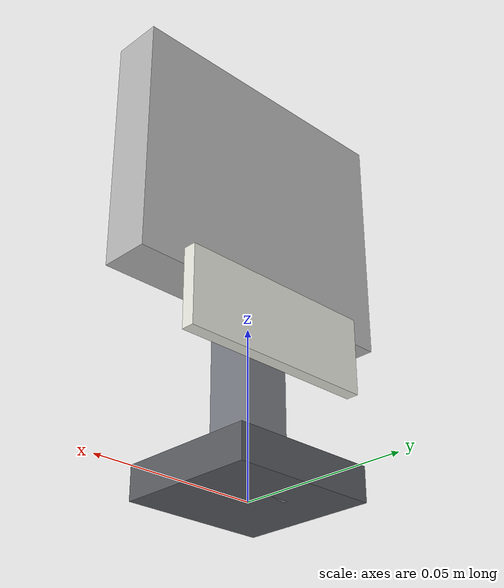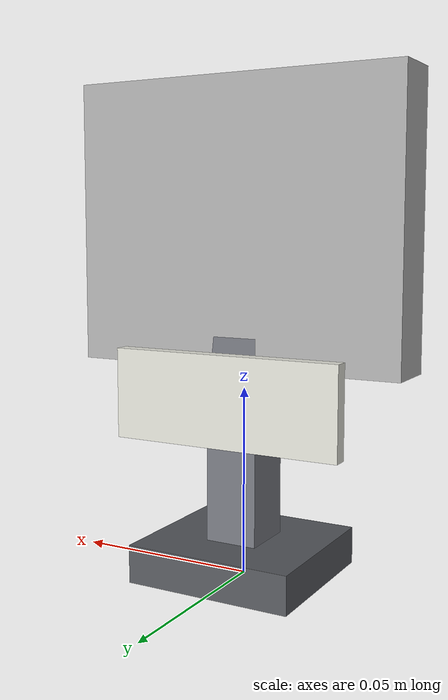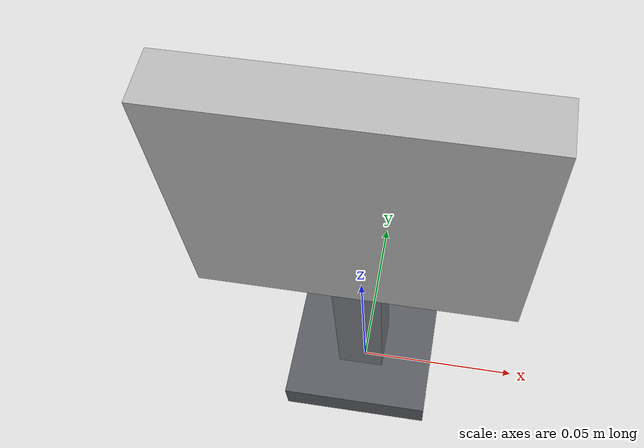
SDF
<?xml version="1.0"?>
<sdf version="1.7">
  <model name="gauge">
    <static>true</static>
    <link name="link">
<visual name="base"><pose>0 0 0.005 0 0 0</pose><geometry><box><size>0.0450 0.0420 0.010</size></box></geometry><material><ambient>0.35 0.36 0.38 1</ambient><diffuse>0.35 0.36 0.38 1</diffuse></material></visual>
      <collision name="base_c_c"><pose>0 0 0.005 0 0 0</pose><geometry><box><size>0.0450 0.0420 0.010</size></box></geometry></collision>
      <visual name="panel"><pose>0 0 0.0928 0 0 0</pose><geometry><box><size>0.0900 0.0150 0.0736</size></box></geometry><material><script><uri>model://gauge/materials/scripts</uri><uri>model://gauge/materials/textures</uri><name>Dial</name></script></material></visual>
      <collision name="panel_c_c"><pose>0 0 0.0928 0 0 0</pose><geometry><box><size>0.0900 0.0150 0.0736</size></box></geometry></collision>
      <visual name="post"><pose>0 0 0.0320 0 0 0</pose><geometry><box><size>0.014 0.0150 0.0640</size></box></geometry><material><ambient>0.48 0.49 0.52 1</ambient><diffuse>0.48 0.49 0.52 1</diffuse></material></visual>
      <visual name="tag"><pose>0 0.0105 0.0480 0 0 0</pose><geometry><box><size>0.0630 0.004 0.024</size></box></geometry><material><ambient>0.92 0.92 0.88 1</ambient><diffuse>0.92 0.92 0.88 1</diffuse></material></visual>
    </link>
  </model>
</sdf>
